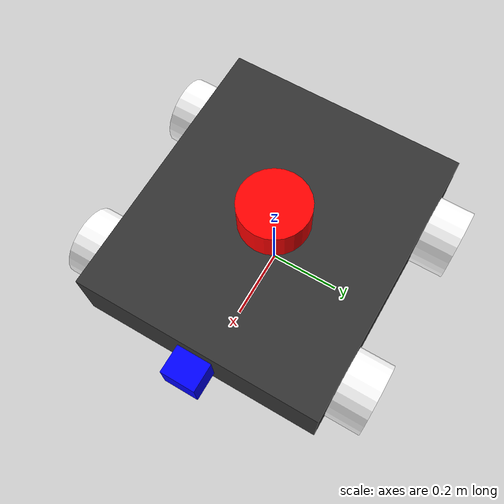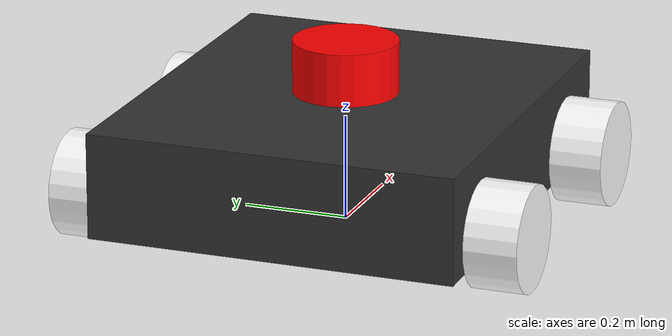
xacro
<?xml version="1.0" ?>
  <robot name="bot" xmlns:xacro="http://ros.org/wiki/xacro">

  <xacro:include filename="bot_ros2_control.xacro" />

  <link name="base_footprint">
      <inertial>
            <mass value="2" />
            <inertia ixx="0.04" ixy="0.0" ixz="0"
            iyy="0.17" iyz="0" izz="0.25" />
    </inertial>
  </link>

  <joint name="base_joint" type="fixed">
    <parent link="base_footprint"/>
    <child link="base_link"/>
    <origin xyz="0.0 0.0 0.15" rpy="0.0 0.0 3.14159"/>
  </joint>

  <link name="base_link">
    <visual>
      <geometry>
          <box size=".8 0.7 0.2"/>
      </geometry>
      <material name="gray">
        <color rgba=".2 .2 .2 1" />
      </material>
    </visual>
    <inertial>
            <mass value="2" />
            <inertia ixx="0.04" ixy="0.0" ixz="0"
            iyy="0.17" iyz="0" izz="0.25" />
    </inertial>

    <collision>
      <geometry>
          <box size=".8 0.7 0.2"/>
      </geometry>
    </collision>
  </link>

  <link name="wheel_front_right">
    <inertial>
            <mass value="2" />
            <inertia ixx="1e-3" ixy="0.0" ixz="0"
            iyy="1e-3" iyz="0" izz="1e-3" />
    </inertial>

    <visual>

      <geometry>
          <cylinder radius="0.10" length="0.1"/>
      </geometry>
      <material name="white">
        <color rgba="1 1 1 1"/>
      </material>
    </visual>

    <collision>

      <geometry>
          <sphere radius="0.10"/>
      </geometry>
    </collision>
  </link>

  <link name="wheel_front_left">
    <inertial>
            <mass value="2" />
            <inertia ixx="1e-3" ixy="0.0" ixz="0"
            iyy="1e-3" iyz="0" izz="1e-3" />
    </inertial>

    <visual>

      <geometry>
          <cylinder radius="0.10" length="0.1"/>
      </geometry>
      <material name="white">
        <color rgba="1 1 1 1"/>
      </material>
    </visual>

    <collision>
      <geometry>
          <sphere radius="0.10" />
      </geometry>
    </collision>
  </link>

<link name="wheel_back_right">
    <inertial>
            <mass value="2" />
            <inertia ixx="1e-3" ixy="0.0" ixz="0"
            iyy="1e-3" iyz="0" izz="1e-3" />
    </inertial>

    <visual>

      <geometry>
          <cylinder radius="0.10" length="0.1"/>
      </geometry>
      <material name="white">
        <color rgba="1 1 1 1"/>
      </material>
    </visual>

    <collision>
      <geometry>
          <sphere radius="0.10" />
      </geometry>
    </collision>
  </link>

  <link name="wheel_back_left">
    <inertial>
            <mass value="2" />
            <inertia ixx="1e-3" ixy="0.0" ixz="0"
            iyy="1e-3" iyz="0" izz="1e-3" />
    </inertial>

    <visual>

      <geometry>
          <cylinder radius="0.10" length="0.1"/>
      </geometry>
      <material name="white">
        <color rgba="1 1 1 1"/>
      </material>
    </visual>

    <collision>
      <geometry>
          <sphere radius="0.10"/>
      </geometry>
    </collision>
  </link>

  <link name="rgb_camera">
    <inertial>
            <mass value="0.5" />
            <inertia ixx="0.01" ixy="0.0" ixz="0"
            iyy="0.01" iyz="0" izz="0.01" />
    </inertial>

    <visual>

      <geometry>
        <box size="0.1 0.1 0.1"/>
      </geometry>
      <material name="blue">
        <color rgba="0 0 1 1"/>
      </material>
    </visual>    <origin xyz="-0.35 0 0.15" rpy="0 0.0 3.14"/>

    <collision>
      <geometry>
          <box size="0.1 0.5 0.2"/>
      </geometry>
    </collision>
  </link>

  <joint name="camera_joint" type="fixed">
    <origin xyz="-0.43 0 0.0" rpy="0 0.0 3.14"/>
    <parent link="base_link"/>
    <child link="rgb_camera"/>
    <axis xyz="0.0 0 0"/>

  </joint>

    <gazebo reference="rgb_camera">
        <sensor name="camera" type="camera">
            <always_on>true</always_on>
            <update_rate>30.0</update_rate>
            <visualize>true</visualize>
            <topic>/camera/image_raw</topic>
            <gz_frame_id>/rgb_camera</gz_frame_id>
            <camera name="camera">
            <horizontal_fov>1.21126</horizontal_fov>
            <image>
                <width>640</width>
                <height>640</height>
                <format>R8G8B8</format>
            </image>
            <distortion>
                <k1>0.0</k1>
                <k2>0.0</k2>
                <k3>0.0</k3>
                <p1>0.0</p1>
                <p2>0.0</p2>
                <center>0.5 0.5</center>
            </distortion>
            </camera>
        </sensor>
    </gazebo>

  <link name="laser_link">
    <inertial>
            <mass value="0.5" />
            <inertia ixx="0.01" ixy="0.0" ixz="0"
            iyy="0.01" iyz="0" izz="0.01" />
    </inertial>

    <visual>
      <geometry>
        <cylinder radius="0.1" length="0.1"/>
      </geometry>
      <material name="red">
        <color rgba="1 0 0  1"/>
      </material>
    </visual>

    <collision>
      <geometry>
        <cylinder radius="0.1" length="0.1"/>
      </geometry>
    </collision>
  </link>

  <joint name="laser_joint" type="fixed">
    <origin xyz="0 0 0.15" rpy="0 0.0 3.14"/>
    <parent link="base_link"/>
    <child link="laser_link"/>
    <axis xyz="0.0 0.0 1.0"/>

  </joint>

    <!-- 2D LIDAR-->

  <!-- velodyne vlp-32 3D lidar plugin-->
  <gazebo reference="laser_link">
    <sensor name="lidar" type="gpu_lidar">
      <update_rate>10</update_rate>
      <topic>scan</topic>
      <gz_frame_id>laser_link</gz_frame_id>
      <lidar>
        <scan>
          <horizontal>
            <samples>720</samples>
            <resolution>1</resolution>
            <min_angle>-3.14156</min_angle>
            <max_angle>3.14156</max_angle>
          </horizontal>
          <vertical>
            <samples>32</samples>
            <min_angle>-0.5353</min_angle>
            <max_angle>0.1862</max_angle>
          </vertical>
        </scan>
        <range>
          <min>0.05</min>
          <max>10.0</max>
          <resolution>0.01</resolution>
        </range>
        <noise>
            <type>gaussian</type>
            <mean>0.0</mean>
            <stddev>0.01</stddev>
        </noise>
        <frame_id>scan_link</frame_id>
      </lidar>
      <always_on>1</always_on>
      <visualize>true</visualize>
    </sensor>
  </gazebo>

  <joint name="navsat_joint" type="fixed">
    <origin xyz="0 0 0" rpy="0 0 0" />
    <parent link="base_link"/>
    <child link="navsat_link" />
  </joint>

  <link name="navsat_link">
  </link>

  <gazebo reference="navsat_link">
    <sensor name="navsat" type="navsat">
      <always_on>1</always_on>
      <update_rate>1</update_rate>
      <topic>navsat</topic>
      <gz_frame_id>navsat_link</gz_frame_id>
    </sensor>
  </gazebo>

    <joint name="wheel_front_right_joint" type="continuous">
    <origin xyz="-0.25 0.4 -0.05" rpy="1.57 0.0 0.0"/>
    <parent link="base_link"/>
    <child link="wheel_front_right"/>
    <axis xyz="0.0 0.0 1.0"/>
  </joint>

  <joint name="wheel_front_left_joint" type="continuous">
    <origin xyz="-0.25 -0.4 -0.05" rpy="1.57 0.0 0.0"/>
    <parent link="base_link"/>
    <child link="wheel_front_left"/>
    <axis xyz="0.0 0.0 1.0"/>

  </joint>

    <joint name="wheel_back_right_joint" type="continuous">
    <origin xyz="0.25 0.4 -0.05" rpy="1.57 0.0 0.0"/>
    <parent link="base_link"/>
    <child link="wheel_back_right"/>
    <axis xyz="0.0 0.0 1.0"/>

  </joint>

  <joint name="wheel_back_left_joint" type="continuous">
    <origin xyz="0.25 -0.4 -0.05" rpy="1.57 0.0 0.0"/>
    <parent link="base_link"/>
    <child link="wheel_back_left"/>
    <axis xyz="0.0 0.0 1.0"/>

  </joint>

    <gazebo reference="wheel_front_right">
    <mu1>1000000000000000.0</mu1>
    <mu2>1000000000000000.0</mu2>
    <kp>1000000000000.0</kp>
    <kd>10.0</kd>
    <minDepth>0.001</minDepth>
    <maxVel>0.1</maxVel>
    <fdir1>1 0 0</fdir1>
    </gazebo>

    <gazebo reference="wheel_front_left">
    <mu1>1000000000000000.0</mu1>
    <mu2>1000000000000000.0</mu2>
    <kp>1000000000000.0</kp>
    <kd>10.0</kd>
    <minDepth>0.001</minDepth>
    <maxVel>0.1</maxVel>
    <fdir1>1 0 0</fdir1>
    </gazebo>

    <gazebo reference="wheel_back_right">
    <mu1>1000000000000000.0</mu1>
    <mu2>1000000000000000.0</mu2>
    <kp>1000000000000.0</kp>
    <kd>10.0</kd>
    <minDepth>0.001</minDepth>
    <maxVel>0.1</maxVel>
    <fdir1>1 0 0</fdir1>
    </gazebo>

    <gazebo reference="wheel_back_left">
    <mu1>1000000000000000.0</mu1>
    <mu2>1000000000000000.0</mu2>
    <kp>1000000000000.0</kp>
    <kd>10.0</kd>
    <minDepth>0.001</minDepth>
    <maxVel>0.1</maxVel>
    <fdir1>1 0 0</fdir1>
    </gazebo>

    <gazebo>
        <plugin filename="ign_ros2_control-system" name="ign_ros2_control::IgnitionROS2ControlPlugin">
          <parameters>$(find bot_controller)/config/bot_controller.yaml</parameters>
        </plugin>
        <plugin filename="ignition-gazebo-imu-system" name="ignition::gazebo::systems::Imu"></plugin>
        <plugin filename="ignition-gazebo-sensors-system" name="ignition::gazebo::systems::Sensors">
        <render_engine>ogre2</render_engine>
      </plugin>
        <plugin
        filename="ignition-gazebo-navsat-system"
        name="ignition::gazebo::systems::NavSat">
      </plugin>
    </gazebo>

</robot>
